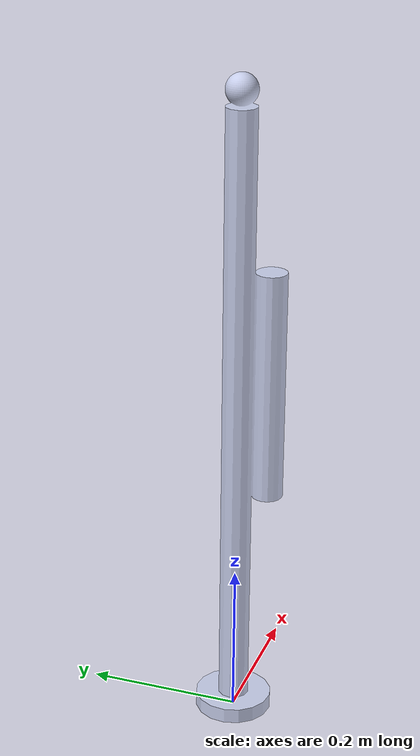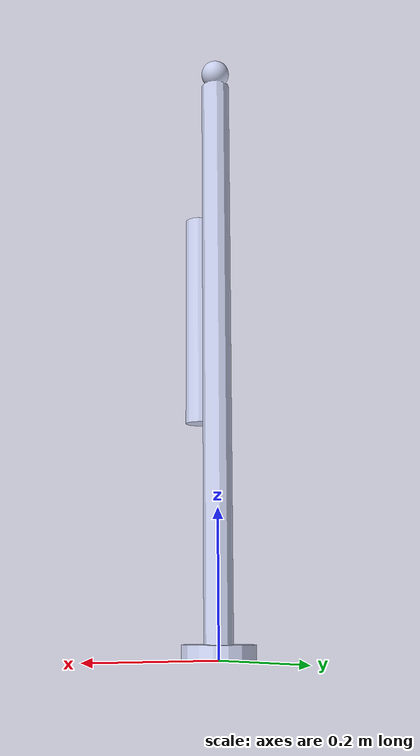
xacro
<?xml version="1.0"?>
<robot
  name="flare" xmlns:xacro="http://www.ros.org/wiki/xacro">

  <xacro:include filename="$(find flare)/urdf/materials.xacro" />
  <xacro:include filename="$(find flare)/urdf/flare.gazebo" />
  <link
    name="base_link">
    <inertial>
      <origin
        xyz="0 0 0"
        rpy="0 0 0" />
      <mass
        value="250" />
      <inertia
        ixx="2.70025"
        ixy="-0.00065535"
        ixz="-0.00028377"
        iyy="2.0073069"
        iyz="-0.0082089"
        izz="2.69672" />
    </inertial>
    <visual>
      <origin
        xyz="0 0 0"
        rpy="0 0 0" />
      <geometry>
        <mesh
          filename="package://flare/meshes/base_link.STL" />
      </geometry>
      <material
        name="">
        <color
          rgba="0.79216 0.81961 0.93333 1" />
      </material>
    </visual>
    <collision>
      <origin
        xyz="0 0 0"
        rpy="0 0 0" />
      <geometry>
        <mesh
          filename="package://flare/meshes/base_link.STL" />
      </geometry>
    </collision>
  </link>
</robot>
